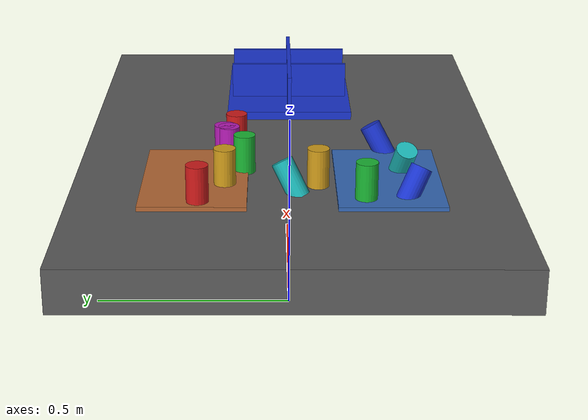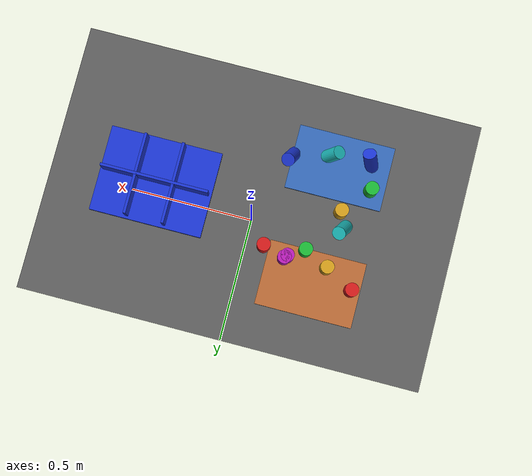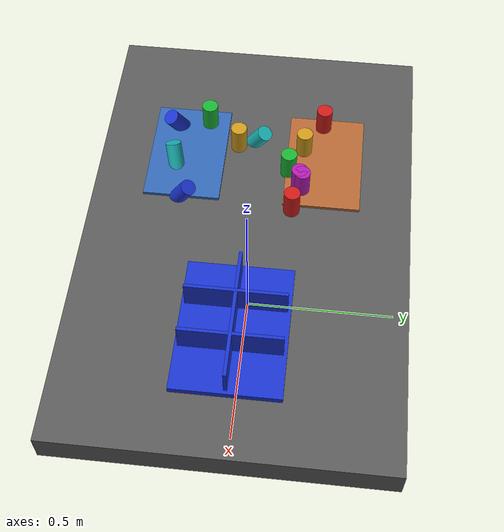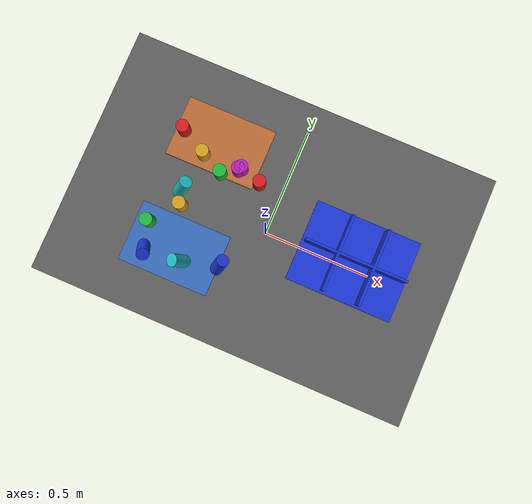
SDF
<?xml version="1.0" ?>
<sdf version="1.9">
  <!-- Standalone M1B scene.  The controller-backed Panda is spawned by the
       existing launch path; this file never alters the frozen M1A cube world. -->
  <world name="industrial_cylinder_v1">
    <physics name="bullet" type="bullet"><max_step_size>0.001</max_step_size><real_time_factor>1.0</real_time_factor></physics>
    <plugin name="gz::sim::systems::Physics" filename="gz-sim-physics-system"><engine><filename>gz-physics-bullet-featherstone-plugin</filename></engine></plugin>
    <plugin name="gz::sim::systems::UserCommands" filename="gz-sim-user-commands-system"/>
    <plugin name="gz::sim::systems::SceneBroadcaster" filename="gz-sim-scene-broadcaster-system"/>
    <plugin name="gz::sim::systems::Sensors" filename="gz-sim-sensors-system"><render_engine>ogre2</render_engine></plugin>
    <gravity>0 0 -9.81</gravity>
    <light type="directional" name="industrial_light"><pose>0 0 5 0 0 0</pose><direction>-0.3 0.2 -0.9</direction><diffuse>0.9 0.9 0.9 1</diffuse></light>
    <model name="industrial_work_table"><static>true</static><link name="link"><pose>0 0 0.4 0 0 0</pose><collision name="collision"><geometry><box><size>1.5 1.0 0.1</size></box></geometry></collision><visual name="visual"><geometry><box><size>1.5 1.0 0.1</size></box></geometry><material><diffuse>0.35 0.35 0.35 1</diffuse></material></visual></link></model>
    <model name="camera_fixture"><static>true</static><link name="camera_rgbd"><pose>-0.80 -0.80 1.40 0 0.77 0.93</pose><sensor name="front_rgbd" type="rgbd_camera"><always_on>1</always_on><update_rate>15</update_rate><topic>/xh/camera/rgbd</topic><camera><horizontal_fov>1.047</horizontal_fov><image><width>640</width><height>480</height><format>R8G8B8</format></image><clip><near>0.1</near><far>4.0</far></clip></camera></sensor></link></model>
    <model name="incoming_zone_a"><static>true</static><link name="link"><pose>-0.28 -0.22 0.455 0 0 0</pose><visual name="visual"><geometry><box><size>0.36 0.24 0.01</size></box></geometry><material><diffuse>0.2 0.4 0.7 1</diffuse></material></visual></link></model>
    <model name="incoming_zone_b"><static>true</static><link name="link"><pose>-0.28 0.22 0.455 0 0 0</pose><visual name="visual"><geometry><box><size>0.36 0.24 0.01</size></box></geometry><material><diffuse>0.7 0.4 0.2 1</diffuse></material></visual></link></model>
    <!-- M1B_RANDOM_PARTS_BEGIN -->
    <model name="cylinder_01"><pose>-0.0801 0.1300 0.5000 0.0000 0.0000 -0.4773</pose><link name="link"><inertial><mass>0.06</mass></inertial><collision name="collision"><geometry><cylinder><radius>0.025</radius><length>0.09</length></cylinder></geometry></collision><visual name="visual"><geometry><cylinder><radius>0.025</radius><length>0.09</length></cylinder></geometry><material><diffuse>0.800 0.100 0.100 1</diffuse><specular>0.15 0.15 0.15 1</specular></material></visual></link></model>
    <model name="cylinder_02"><pose>-0.4069 -0.1634 0.5000 3.1416 0.0000 2.9762</pose><link name="link"><inertial><mass>0.06</mass></inertial><collision name="collision"><geometry><cylinder><radius>0.025</radius><length>0.09</length></cylinder></geometry></collision><visual name="visual"><geometry><cylinder><radius>0.025</radius><length>0.09</length></cylinder></geometry><material><diffuse>0.100 0.700 0.200 1</diffuse><specular>0.15 0.15 0.15 1</specular></material></visual></link></model>
    <model name="cylinder_03"><pose>-0.0968 -0.2126 0.4800 0.4500 -0.3000 -2.9801</pose><link name="link"><inertial><mass>0.06</mass></inertial><collision name="collision"><geometry><cylinder><radius>0.025</radius><length>0.09</length></cylinder></geometry></collision><visual name="visual"><geometry><cylinder><radius>0.025</radius><length>0.09</length></cylinder></geometry><material><diffuse>0.100 0.200 0.800 1</diffuse><specular>0.15 0.15 0.15 1</specular></material></visual></link></model>
    <model name="cylinder_04"><pose>-0.3207 -0.0597 0.5000 0.0000 0.0000 1.4297</pose><link name="link"><inertial><mass>0.06</mass></inertial><collision name="collision"><geometry><cylinder><radius>0.025</radius><length>0.09</length></cylinder></geometry></collision><visual name="visual"><geometry><cylinder><radius>0.025</radius><length>0.09</length></cylinder></geometry><material><diffuse>0.800 0.600 0.100 1</diffuse><specular>0.15 0.15 0.15 1</specular></material></visual></link></model>
    <model name="cylinder_05"><pose>-0.1721 0.1458 0.5000 3.1416 0.0000 -0.8615</pose><link name="link"><inertial><mass>0.06</mass></inertial><collision name="collision"><geometry><cylinder><radius>0.025</radius><length>0.09</length></cylinder></geometry></collision><visual name="visual"><geometry><cylinder><radius>0.025</radius><length>0.09</length></cylinder></geometry><material><diffuse>0.700 0.100 0.700 1</diffuse><specular>0.15 0.15 0.15 1</specular></material></visual></link></model>
    <model name="cylinder_06"><pose>-0.3432 0.0027 0.4800 0.4500 -0.3000 -3.1190</pose><link name="link"><inertial><mass>0.06</mass></inertial><collision name="collision"><geometry><cylinder><radius>0.025</radius><length>0.09</length></cylinder></geometry></collision><visual name="visual"><geometry><cylinder><radius>0.025</radius><length>0.09</length></cylinder></geometry><material><diffuse>0.100 0.700 0.700 1</diffuse><specular>0.15 0.15 0.15 1</specular></material></visual></link></model>
    <model name="cylinder_07"><pose>-0.4247 0.2082 0.5000 0.0000 0.0000 0.1480</pose><link name="link"><inertial><mass>0.06</mass></inertial><collision name="collision"><geometry><cylinder><radius>0.025</radius><length>0.09</length></cylinder></geometry></collision><visual name="visual"><geometry><cylinder><radius>0.025</radius><length>0.09</length></cylinder></geometry><material><diffuse>0.800 0.100 0.100 1</diffuse><specular>0.15 0.15 0.15 1</specular></material></visual></link></model>
    <model name="cylinder_08"><pose>-0.2306 0.1082 0.5000 3.1416 0.0000 -0.6533</pose><link name="link"><inertial><mass>0.06</mass></inertial><collision name="collision"><geometry><cylinder><radius>0.025</radius><length>0.09</length></cylinder></geometry></collision><visual name="visual"><geometry><cylinder><radius>0.025</radius><length>0.09</length></cylinder></geometry><material><diffuse>0.100 0.700 0.200 1</diffuse><specular>0.15 0.15 0.15 1</specular></material></visual></link></model>
    <model name="cylinder_09"><pose>-0.3821 -0.2682 0.4800 0.4500 -0.3000 1.1592</pose><link name="link"><inertial><mass>0.06</mass></inertial><collision name="collision"><geometry><cylinder><radius>0.025</radius><length>0.09</length></cylinder></geometry></collision><visual name="visual"><geometry><cylinder><radius>0.025</radius><length>0.09</length></cylinder></geometry><material><diffuse>0.100 0.200 0.800 1</diffuse><specular>0.15 0.15 0.15 1</specular></material></visual></link></model>
    <model name="cylinder_10"><pose>-0.3200 0.1513 0.5000 0.0000 0.0000 0.7718</pose><link name="link"><inertial><mass>0.06</mass></inertial><collision name="collision"><geometry><cylinder><radius>0.025</radius><length>0.09</length></cylinder></geometry></collision><visual name="visual"><geometry><cylinder><radius>0.025</radius><length>0.09</length></cylinder></geometry><material><diffuse>0.800 0.600 0.100 1</diffuse><specular>0.15 0.15 0.15 1</specular></material></visual></link></model>
    <model name="cylinder_11"><pose>-0.1627 0.1548 0.5000 3.1416 0.0000 1.4524</pose><link name="link"><inertial><mass>0.06</mass></inertial><collision name="collision"><geometry><cylinder><radius>0.025</radius><length>0.09</length></cylinder></geometry></collision><visual name="visual"><geometry><cylinder><radius>0.025</radius><length>0.09</length></cylinder></geometry><material><diffuse>0.700 0.100 0.700 1</diffuse><specular>0.15 0.15 0.15 1</specular></material></visual></link></model>
    <model name="cylinder_12"><pose>-0.2402 -0.2565 0.4800 0.4500 -0.3000 -0.6699</pose><link name="link"><inertial><mass>0.06</mass></inertial><collision name="collision"><geometry><cylinder><radius>0.025</radius><length>0.09</length></cylinder></geometry></collision><visual name="visual"><geometry><cylinder><radius>0.025</radius><length>0.09</length></cylinder></geometry><material><diffuse>0.100 0.700 0.700 1</diffuse><specular>0.15 0.15 0.15 1</specular></material></visual></link></model>
    <!-- M1B_RANDOM_PARTS_END -->
    <model name="blue_partition_bin"><static>true</static><pose>0.36 0 0.45 0 0 0</pose><link name="link"><collision name="floor"><pose>0 0 0.01 0 0 0</pose><geometry><box><size>0.42 0.32 0.02</size></box></geometry></collision><visual name="floor_visual"><pose>0 0 0.01 0 0 0</pose><geometry><box><size>0.42 0.32 0.02</size></box></geometry><material><diffuse>0.1 0.2 0.8 1</diffuse></material></visual><visual name="row_divider"><pose>0 0 0.06 0 0 0</pose><geometry><box><size>0.40 0.01 0.10</size></box></geometry><material><diffuse>0.1 0.2 0.8 1</diffuse></material></visual><visual name="col_divider_a"><pose>-0.07 0 0.06 0 0 0</pose><geometry><box><size>0.01 0.30 0.10</size></box></geometry><material><diffuse>0.1 0.2 0.8 1</diffuse></material></visual><visual name="col_divider_b"><pose>0.07 0 0.06 0 0 0</pose><geometry><box><size>0.01 0.30 0.10</size></box></geometry><material><diffuse>0.1 0.2 0.8 1</diffuse></material></visual></link></model>
    <!-- Reserved only: second table, bin transport corridor, stackable-bin
         collision volume, and second arm mounting namespace. -->
  </world>
</sdf>
